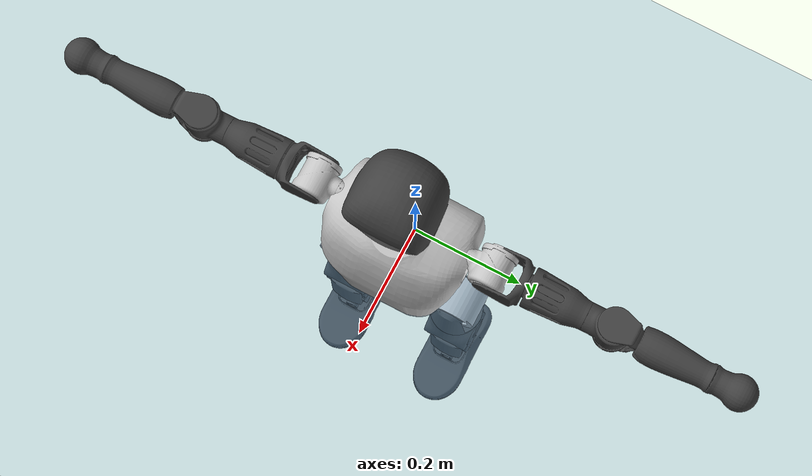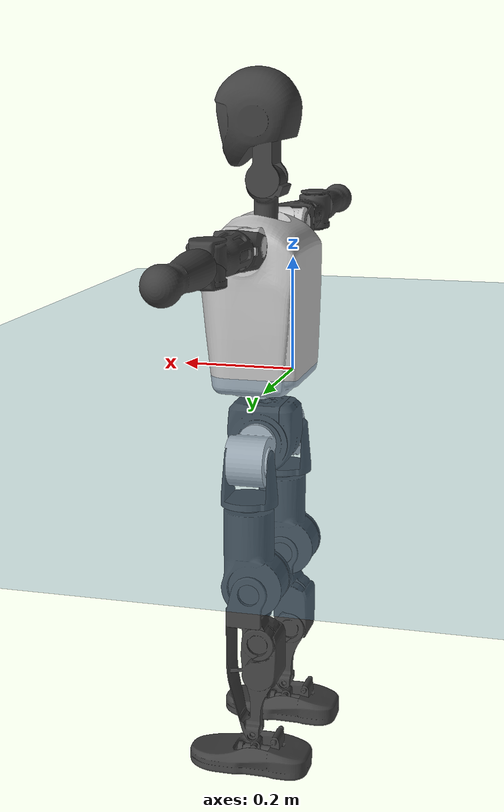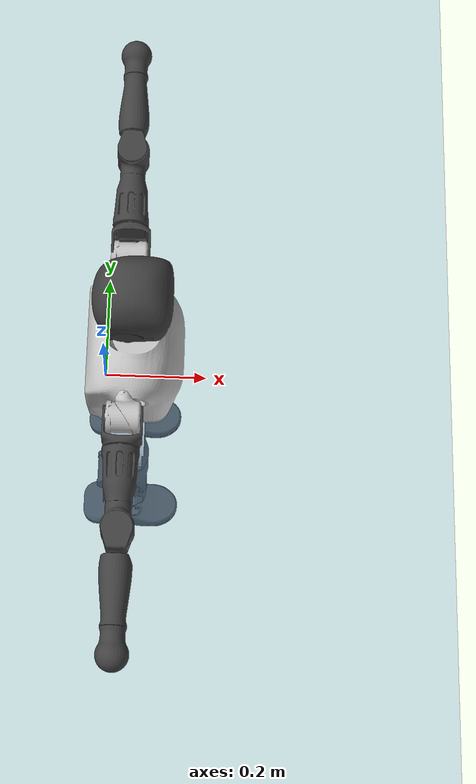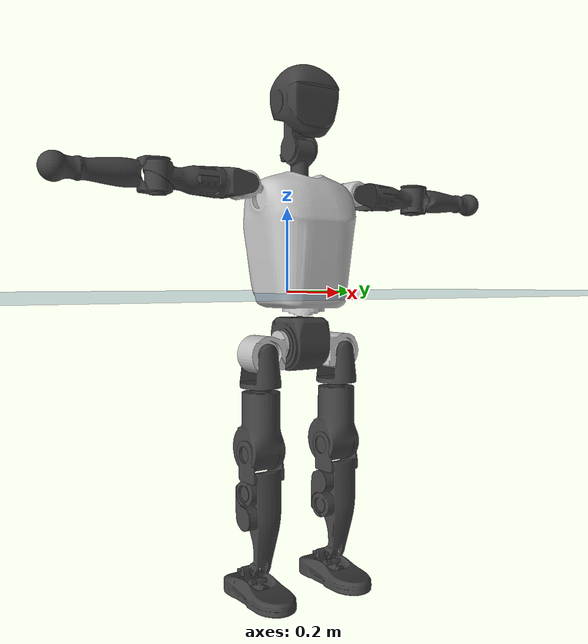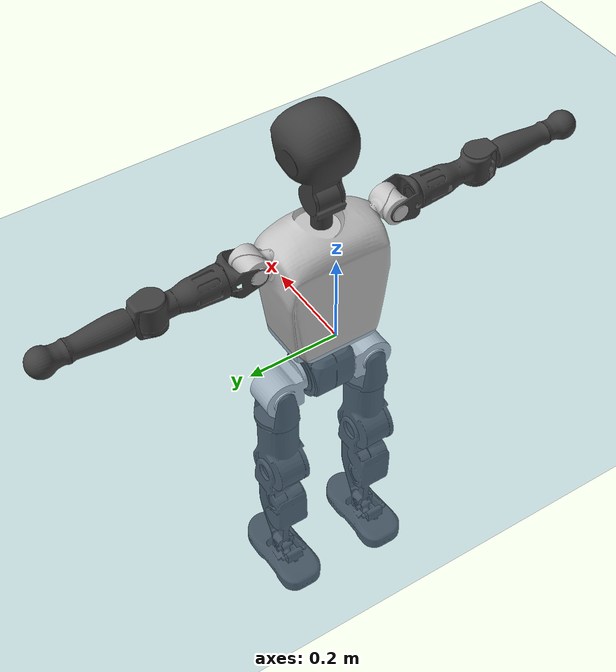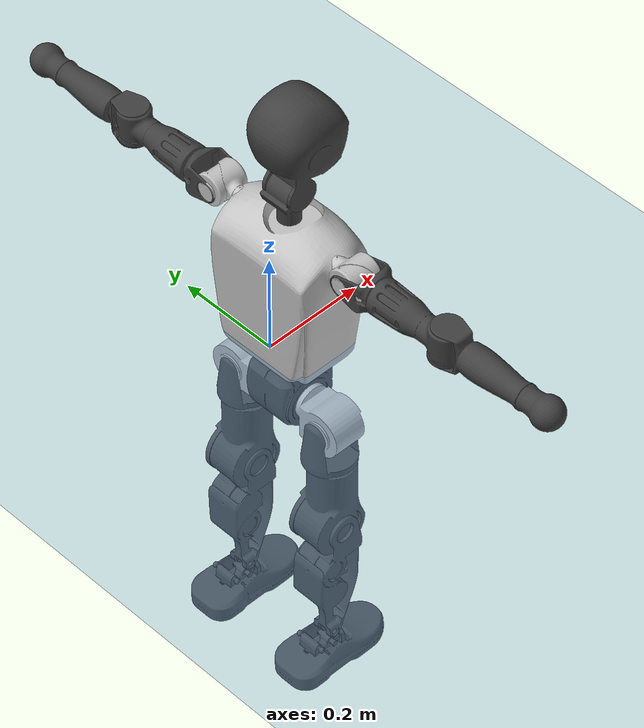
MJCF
<mujoco model="T1">
  <compiler angle="radian" assetdir="assets" balanceinertia="true" inertiafromgeom="false"/>

  <option timestep="0.005" density="1.2" viscosity="2e-05"/>

  <size nkey="1"/>

  <visual>
    <quality shadowsize="8192"/>
    <map shadowclip="0.5"/>
  </visual>

  <default>
    <default class="/">
      <joint armature="0.01" damping="0.01" frictionloss="0.1"/>
      <geom contype="0" conaffinity="0" group="1" solref="-1000 -80"/>
      <site size="0.01 0.005 0.005" group="5"/>
      <general forcelimited="true" biastype="affine" gainprm="25" biasprm="0 -25 -0.6"/>
      <default class="t1">
        <geom rgba="0.25 0.25 0.25 1"/>
        <default class="visual">
          <geom type="mesh" group="2"/>
        </default>
        <default class="collision">
          <geom group="3"/>
        </default>
        <default class="foot">
          <geom size="0.1115 0.05 0.015" type="box" condim="6" group="4" priority="1" solimp="0.015 1 0.015"/>
        </default>
        <default class="reward_collision_sphere">
          <geom group="5" rgba="1 0 0 1"/>
        </default>
      </default>
    </default>
  </default>

  <asset>
    <texture type="skybox" colorspace="auto" name="//unnamed_texture_0" builtin="gradient" rgb1="0.95 0.95 0.95" rgb2="0.95 0.95 0.95" width="100" height="600"/>
    <texture type="2d" colorspace="auto" name="texplane" builtin="checker" rgb1="0.345 0.575 0.748" rgb2="0.345 0.575 0.748" markrgb="1 1 1" width="512" height="512"/>
    <material name="MatPlane" class="/" texture="texplane" texuniform="true" texrepeat="2 2" specular="0.9"/>
    <mesh name="Trunk" class="/" file="Trunk.stl"/>
    <mesh name="H1" class="/" file="H1.stl"/>
    <mesh name="H2" class="/" file="H2.stl"/>
    <mesh name="AL1" class="/" file="AL1.stl"/>
    <mesh name="AL2" class="/" file="AL2.stl"/>
    <mesh name="AL3" class="/" file="AL3.stl"/>
    <mesh name="left_hand_link" class="/" file="left_hand_link.stl"/>
    <mesh name="AR1" class="/" file="AR1.stl"/>
    <mesh name="AR2" class="/" file="AR2.stl"/>
    <mesh name="AR3" class="/" file="AR3.stl"/>
    <mesh name="right_hand_link" class="/" file="right_hand_link.stl"/>
    <mesh name="Waist" class="/" file="Waist.stl"/>
    <mesh name="Hip_Pitch_Left" class="/" file="Hip_Pitch_Left.stl"/>
    <mesh name="Hip_Roll_Left" class="/" file="Hip_Roll_Left.stl"/>
    <mesh name="Hip_Yaw_Left" class="/" file="Hip_Yaw_Left.stl"/>
    <mesh name="Shank_Left" class="/" file="Shank_Left.stl"/>
    <mesh name="Ankle_Cross_Left" class="/" file="Ankle_Cross_Left.stl"/>
    <mesh name="left_foot_link" class="/" file="left_foot_link.stl"/>
    <mesh name="Hip_Pitch_Right" class="/" file="Hip_Pitch_Right.stl"/>
    <mesh name="Hip_Roll_Right" class="/" file="Hip_Roll_Right.stl"/>
    <mesh name="Hip_Yaw_Right" class="/" file="Hip_Yaw_Right.stl"/>
    <mesh name="Shank_Right" class="/" file="Shank_Right.stl"/>
    <mesh name="Ankle_Cross_Right" class="/" file="Ankle_Cross_Right.stl"/>
    <mesh name="right_foot_link" class="/" file="right_foot_link.stl"/>
  </asset>

  <worldbody>
    <geom name="floor" class="/" size="100 100 0.125" type="plane" group="0" material="MatPlane"/>
    <light name="toplight_shadow" class="/" pos="0 0 5" dir="0.0990148 0.0990148 -0.990148" type="directional" ambient="0.04 0.04 0.04" diffuse="0.55 0.55 0.55" specular="0.12 0.12 0.12"/>
    <light name="toplight_fill" class="/" pos="0 0 5" dir="0.0990148 0.0990148 -0.990148" type="directional" castshadow="false" ambient="0.04 0.04 0.04" diffuse="0.3 0.3 0.3" specular="0.08 0.08 0.08"/>
    <body name="trunk" childclass="t1" pos="-8.59331e-05 0.00234073 -0.00260281" quat="0.999999 -0.00102169 -0.000540948 0.000255822">
      <inertial pos="0.0405796 -0.000442754 0.113948" quat="0.999959 -0.000663058 -0.00892172 0.00127203" mass="9.65921" diaginertia="0.0201718 0.0802765 0.0810993"/>
      <joint name="//unnamed_joint_0" type="free" armature="0" damping="0" frictionloss="0"/>
      <geom name="//unnamed_geom_1" class="visual" rgba="0.76 0.76 0.76 1" mesh="Trunk"/>
      <geom name="//unnamed_geom_2" class="collision" size="0.071182 0.0949093 0.142364" pos="0.0447749 0 0.130798" type="box"/>
      <geom name="//unnamed_geom_3" class="reward_collision_sphere" size="0.109146" pos="0.0447749 0 0.108999"/>
      <geom name="//unnamed_geom_4" class="reward_collision_sphere" size="0.0142364" pos="0.0447749 0.0859388 0"/>
      <geom name="//unnamed_geom_5" class="reward_collision_sphere" size="0.0142364" pos="0.0447749 -0.0859388 0"/>
      <geom name="//unnamed_geom_6" class="reward_collision_sphere" size="0.0142364" pos="0.0447749 0.108182 0.196198"/>
      <geom name="//unnamed_geom_7" class="reward_collision_sphere" size="0.0142364" pos="0.0447749 -0.108182 0.196198"/>
      <site name="imu" pos="-0.0132047 0.00425758 -0.00250749" size="0.00949093"/>
      <camera name="track" pos="0 -2.02209 0" quat="0.707107 0.707107 0 0" mode="trackcom"/>
      <camera name="ego_camera" pos="0.0910423 0 0.457794" quat="-0.5 -0.5 0.5 0.5"/>
      <body name="H1" pos="0.0478728 -0.000325424 0.266547" quat="0.999999 -0.000846875 -0.000990588 -0.00055156">
        <inertial pos="0.00131501 -0.00028895 0.0620792" quat="0.763171 -0.0143251 0.00178863 0.646035" mass="0.385612" diaginertia="5.64342e-05 0.000241272 0.000220672"/>
        <joint name="AAHead_yaw" pos="0 0 0" axis="0.00152112 -0.00201135 0.999997" range="-1.61471 1.57609" armature="0.00916062" damping="0" frictionloss="0.0981598"/>
        <geom name="//unnamed_geom_8" class="visual" mesh="H1"/>
        <body name="H2" pos="-0.0007017 -0.000526193 0.0693395" quat="0.999999 0.000736483 0.000954613 0.000414761">
          <inertial pos="0.00482506 -7.18395e-06 0.107229" quat="0.988349 0.106741 -0.0745799 -0.0788026" mass="0.525171" diaginertia="0.000457789 0.00197293 0.00266234"/>
          <joint name="Head_pitch" pos="0 0 0" axis="0.00389389 -0.999906 -0.013184" range="-1.27598 0.401945" armature="0.0108191" damping="0.0186937" frictionloss="0.10671"/>
          <geom name="//unnamed_geom_9" class="visual" mesh="H2"/>
          <geom name="//unnamed_geom_10" class="collision" size="0.0759275" pos="0.00746248 0 0.119899"/>
          <geom name="//unnamed_geom_11" class="reward_collision_sphere" size="0.0854184" pos="0.014925 0 0.108999"/>
        </body>
      </body>
      <body name="AL1" pos="0.0461795 0.110181 0.24114" quat="1 6.07783e-05 0.000813883 0.000430374">
        <inertial pos="-0.00301232 0.0441676 -0.00167552" quat="0.513475 0.490793 -0.50719 0.488082" mass="0.440432" diaginertia="0.000306835 0.00136576 0.000442658"/>
        <joint name="Left_Shoulder_Pitch" pos="0 0 0" axis="0.00196455 0.999998 -0.000590185" stiffness="0.000827421" range="-3.29372 1.21799" armature="0.00947002" damping="0.018621" frictionloss="0.090661"/>
        <geom name="//unnamed_geom_12" class="visual" rgba="0.76 0.76 0.76 1" mesh="AL1"/>
        <body name="AL2" pos="-0.000668959 0.0497248 -0.00269104" quat="0.999999 -0.000971404 0.000833486 0.000433673">
          <inertial pos="0.00236203 0.0377046 -0.00291023" quat="0.484889 0.510212 -0.48844 0.515745" mass="0.142441" diaginertia="9.39523e-05 0.000357045 0.000271997"/>
          <joint name="Left_Shoulder_Roll" pos="0 0 0" axis="-0.999937 -0.0107213 -0.00336804" range="-1.5611 1.75213" armature="0.00892075" damping="0.00350705" frictionloss="0.0824839"/>
          <geom name="//unnamed_geom_13" class="visual" mesh="AL2"/>
          <body name="AL3" pos="-0.00198236 0.0596162 0.00095844" quat="1 -9.43965e-05 0.000560148 0.000341108">
            <inertial pos="0.000505492 0.0863707 0.00261728" quat="0.705702 0.708509 -0.000448529 0.0002173" mass="0.876821" diaginertia="0.00303529 0.0136767 0.000938308"/>
            <joint name="Left_Elbow_Pitch" pos="0 0 0" axis="-0.0135822 -0.999907 0.00122215" stiffness="0.000539557" range="-2.29248 2.279" armature="0.00958822" damping="0.00276959" frictionloss="0.0994901"/>
            <geom name="//unnamed_geom_14" class="visual" mesh="AL3"/>
            <geom name="//unnamed_geom_15" class="collision" size="0.0284728 0.071182" pos="0 0.0505522 0" quat="0.707105 0.707108 0 0" type="cylinder"/>
            <geom name="//unnamed_geom_16" class="reward_collision_sphere" size="0.0341674"/>
            <body name="left_hand_link" pos="-0.00203141 0.146598 0.00249101" quat="1 -0.000119062 -0.000183359 -7.53893e-05">
              <inertial pos="1.16186e-05 0.112112 0.00321062" quat="0.708282 0.705929 -0.000713236 -0.000588548" mass="0.284407" diaginertia="0.00188427 0.00911893 0.000341057"/>
              <joint name="Left_Elbow_Yaw" pos="0 0 0" axis="0.00992367 0.0117083 0.999882" range="-2.44556 0.00739709" armature="0.00885778" damping="0.0111241" frictionloss="0.105709"/>
              <geom name="//unnamed_geom_17" class="visual" mesh="left_hand_link"/>
              <geom name="//unnamed_geom_18" class="collision" size="0.0284728 0.0830456" pos="0 0.131436 0" quat="0.707105 0.707108 0 0" type="cylinder"/>
              <geom name="//unnamed_geom_19" class="reward_collision_sphere" size="0.0474547"/>
              <geom name="//unnamed_geom_20" class="reward_collision_sphere" size="0.0332183" pos="0 0.111215 0"/>
              <geom name="//unnamed_geom_21" class="reward_collision_sphere" size="0.0332183" pos="0 0.217375 0"/>
            </body>
          </body>
        </body>
      </body>
      <body name="AR1" pos="0.0453919 -0.108636 0.241753" quat="0.999999 -0.00104215 0.00103906 -0.000177217">
        <inertial pos="0.000498927 -0.0470491 -0.000681555" quat="0.503344 0.500575 -0.499303 0.496756" mass="0.449646" diaginertia="0.000303742 0.00136433 0.000444809"/>
        <joint name="Right_Shoulder_Pitch" pos="0 0 0" axis="1.58824e-05 -0.999998 -0.0021809" range="-1.22331 3.3557" armature="0.00981076" damping="0" frictionloss="0.0904688"/>
        <geom name="//unnamed_geom_22" class="visual" rgba="0.76 0.76 0.76 1" mesh="AR1"/>
        <body name="AR2" pos="-0.00110647 -0.0464869 0.0010625" quat="0.999999 -0.00084731 0.000460498 0.000794193">
          <inertial pos="0.00190654 -0.0387065 0.00293661" quat="0.512041 0.48872 -0.510108 0.488628" mass="0.131742" diaginertia="9.53397e-05 0.00036894 0.000261723"/>
          <joint name="Right_Shoulder_Roll" pos="0 0 0" axis="-0.999912 0.00888888 -0.00982495" stiffness="0.00131101" range="-1.74642 1.57716" armature="0.00956826" damping="0.0146181" frictionloss="0.108098"/>
          <geom name="//unnamed_geom_23" class="visual" mesh="AR2"/>
          <body name="AR3" pos="-0.000856705 -0.0583511 -0.000394108" quat="1 1.94154e-05 -6.27099e-05 0.00012953">
            <inertial pos="-0.0027661 -0.0859693 -0.00069681" quat="0.700513 0.713597 -4.83247e-05 -0.00773708" mass="0.887418" diaginertia="0.00286011 0.0128809 0.000954355"/>
            <joint name="Right_Elbow_Pitch" pos="0 0 0" axis="0.00350436 0.999967 0.00739181" range="-2.26152 2.23233" armature="0.00807206" damping="0.00313138" frictionloss="0.0989697"/>
            <geom name="//unnamed_geom_24" class="visual" mesh="AR3"/>
            <geom name="//unnamed_geom_25" class="collision" size="0.0284728 0.071182" pos="0 -0.0505522 0" quat="0.707105 0.707108 0 0" type="cylinder"/>
            <geom name="//unnamed_geom_26" class="reward_collision_sphere" size="0.0341674"/>
            <body name="right_hand_link" pos="-0.000217214 -0.149328 0.00261936" quat="1 -7.66612e-06 -4.87262e-06 -2.34024e-05">
              <inertial pos="-0.00257092 -0.107893 0.00103533" quat="0.705961 0.708251 0.000395928 0.000317135" mass="0.275059" diaginertia="0.00186752 0.0083591 0.000330634"/>
              <joint name="Right_Elbow_Yaw" pos="0 0 0" axis="-0.00217819 -0.000207009 0.999998" range="0.0145253 2.44362" armature="0.00939123" damping="0.00407572" frictionloss="0.0928491"/>
              <geom name="//unnamed_geom_27" class="visual" mesh="right_hand_link"/>
              <geom name="//unnamed_geom_28" class="collision" size="0.0284728 0.0830456" pos="0 -0.131436 0" quat="0.707105 0.707108 0 0" type="cylinder"/>
              <geom name="//unnamed_geom_29" class="reward_collision_sphere" size="0.0474547"/>
              <geom name="//unnamed_geom_30" class="reward_collision_sphere" size="0.0332183" pos="0 -0.111215 0"/>
              <geom name="//unnamed_geom_31" class="reward_collision_sphere" size="0.0332183" pos="0 -0.217375 0"/>
            </body>
          </body>
        </body>
      </body>
      <body name="Waist" pos="0.0489357 0.00070604 -0.123384" quat="1 -4.65698e-05 2.24569e-05 -2.12324e-05">
        <inertial pos="0.00397469 -5.8974e-05 0.00900578" quat="0.983691 0.00178819 -0.179805 0.004431" mass="2.18532" diaginertia="0.00119484 0.00572342 0.00702723"/>
        <joint name="Waist" pos="0 0 0" axis="-0.00185806 0.00351605 0.999992" range="-1.62285 1.60395" armature="0.00960685" damping="0" frictionloss="0.0956953"/>
        <geom name="//unnamed_geom_32" class="visual" mesh="Waist"/>
        <body name="Hip_Pitch_Left" pos="1.40212e-05 0.109574 0.00285499" quat="1 0.000232438 7.55767e-05 -0.000347263">
          <inertial pos="-0.00126097 -0.00728523 -0.0222536" quat="0.97525 0.220794 0.0115994 0.00191487" mass="0.900649" diaginertia="0.000428828 0.00153488 0.00189968"/>
          <joint name="Left_Hip_Pitch" pos="0 0 0" axis="0.00594328 0.999978 0.00298471" range="-1.74335 1.57886" armature="0.00957414" damping="0" frictionloss="0.0817522"/>
          <geom name="//unnamed_geom_33" class="visual" rgba="0.76 0.76 0.76 1" mesh="Hip_Pitch_Left"/>
          <body name="Hip_Roll_Left" pos="0.0026709 5.67136e-05 -0.0204954" quat="1 1.07102e-05 -2.30969e-05 6.76403e-06">
            <inertial pos="0.000764377 0.0011096 -0.0584037" quat="0.707696 -0.0118598 -0.00666349 0.706386" mass="0.342795" diaginertia="0.00042155 0.00169717 0.000821987"/>
            <joint name="Left_Hip_Roll" pos="0 0 0" axis="-0.999999 0.000529659 -0.00102133" range="-1.51549 0.203156" armature="0.0095633" damping="0.022329" frictionloss="0.0827034"/>
            <geom name="//unnamed_geom_34" class="visual" mesh="Hip_Roll_Left"/>
            <geom name="//unnamed_geom_35" class="reward_collision_sphere" size="0.0522001"/>
            <body name="Hip_Yaw_Left" pos="-0.00115348 -0.00141587 -0.0873091" quat="1 -2.1909e-05 -1.30177e-05 5.01676e-05">
              <inertial pos="-0.00560348 0.000153679 -0.100188" quat="0.696276 -0.0349107 -0.0325156 0.716187" mass="1.8066" diaginertia="0.0061552 0.026905 0.00403318"/>
              <joint name="Left_Hip_Yaw" pos="0 0 0" axis="-0.0100378 0.00356528 -0.999943" range="-1.01947 1.06173" armature="0.00824199" damping="0" frictionloss="0.0817602"/>
              <geom name="//unnamed_geom_36" class="visual" mesh="Hip_Yaw_Left"/>
              <geom name="//unnamed_geom_37" class="collision" size="0.0474547 0.0759275" type="cylinder"/>
              <body name="Shank_Left" pos="-0.0108558 0.00263597 -0.143877" quat="0.999999 0.000974114 0.000740099 0.000258137">
                <inertial pos="-0.00288626 -0.00179231 -0.136214" quat="0.996971 0.0123916 -0.0305567 0.0704423" mass="1.4965" diaginertia="0.00846433 0.0374007 0.00291205"/>
                <joint name="Left_Knee_Pitch" pos="0 0 0" axis="-0.0103405 0.999892 -0.01048" stiffness="0.00104859" range="0.00683146 2.34336" armature="0.0107151" damping="0.0131271" frictionloss="0.0821395"/>
                <geom name="//unnamed_geom_38" class="visual" mesh="Shank_Left"/>
                <geom name="//unnamed_geom_39" class="collision" size="0.0474547 0.071182" pos="0 0 -0.130798" type="cylinder"/>
                <geom name="//unnamed_geom_40" class="reward_collision_sphere" size="0.0616911"/>
                <body name="Ankle_Cross_Left" pos="-0.0027054 -0.000803899 -0.305265" quat="1 0.000163132 -7.85318e-07 4.53966e-06">
                  <inertial pos="-0.00350293 0.000539236 -0.00887293" quat="0.438085 0.560065 0.544256 0.44519" mass="0.0624733" diaginertia="6.73794e-06 2.74279e-05 1.74549e-05"/>
                  <joint name="Left_Ankle_Pitch" pos="0 0 0" axis="-0.00540253 0.999966 0.00623935" range="-0.866871 0.293386" armature="0.00955055" damping="0.0150009" frictionloss="0.0922219"/>
                  <geom name="//unnamed_geom_41" class="visual" mesh="Ankle_Cross_Left"/>
                  <body name="left_foot_link" pos="0.00213642 7.89127e-05 -0.0130471" quat="0.999999 -0.000210575 8.08045e-05 -0.00100144">
                    <inertial pos="8.82829e-06 -0.000112776 -0.00763501" quat="-8.76053e-06 0.620367 0.000394571 0.784312" mass="0.566203" diaginertia="0.000601273 0.00252227 0.00327451"/>
                    <joint name="Left_Ankle_Roll" pos="0 0 0" axis="-0.999909 0.00864068 -0.0103546" range="-0.493859 0.463975" armature="0.00939381" damping="0.0211144" frictionloss="0.0943339"/>
                    <geom name="//unnamed_geom_42" class="visual" mesh="left_foot_link"/>
                    <geom name="left_foot" class="foot" size="0.114758 0.0519046 0.0154192" pos="0.00746248 0 -0.0163498"/>
                    <geom name="//unnamed_geom_44" class="reward_collision_sphere" size="0.0493528" pos="0.00746248 0 -0.0163498"/>
                    <geom name="//unnamed_geom_45" class="reward_collision_sphere" size="0.0284728" pos="0.0708936 -0.023254 -0.0163498"/>
                    <geom name="//unnamed_geom_46" class="reward_collision_sphere" size="0.0284728" pos="-0.0522374 -0.023254 -0.0163498"/>
                    <site name="left_foot" class="foot" pos="0.00746248 0 -0.0163498" size="0.00949093"/>
                  </body>
                </body>
              </body>
            </body>
          </body>
        </body>
        <body name="Hip_Pitch_Right" pos="-0.00362263 -0.107744 0.00256154" quat="0.999999 -0.000545712 0.000497156 -0.000854052">
          <inertial pos="-0.000529028 0.00530758 -0.0202305" quat="0.973203 -0.229611 0.012452 -7.46057e-05" mass="0.868582" diaginertia="0.000410397 0.00153785 0.00195154"/>
          <joint name="Right_Hip_Pitch" pos="0 0 0" axis="-0.00328946 -0.999993 -0.00179088" range="-1.52583 1.74353" armature="0.00945508" damping="0.0186057" frictionloss="0.106853"/>
          <geom name="//unnamed_geom_47" class="visual" rgba="0.76 0.76 0.76 1" mesh="Hip_Pitch_Right"/>
          <body name="Hip_Roll_Right" pos="-0.00309342 0.0011412 -0.0190801" quat="1 -7.18864e-05 0.000143366 -0.000157411">
            <inertial pos="0.00131192 -0.000486963 -0.057072" quat="0.707176 -0.00612138 -0.00591358 0.706986" mass="0.329697" diaginertia="0.000393136 0.00161503 0.000794238"/>
            <joint name="Right_Hip_Roll" pos="0 0 0" axis="-0.999907 0.00913821 0.0101684" range="-0.152934 1.5573" armature="0.00938866" damping="0.00169553" frictionloss="0.108056"/>
            <geom name="//unnamed_geom_48" class="visual" mesh="Hip_Roll_Right"/>
            <geom name="//unnamed_geom_49" class="reward_collision_sphere" size="0.0522001"/>
            <body name="Hip_Yaw_Right" pos="0.00246476 -0.00103084 -0.0868826" quat="1 3.56293e-05 -1.35241e-05 1.54243e-05">
              <inertial pos="-0.00750226 0.00195684 -0.0983489" quat="0.714439 -0.0310917 -0.0326043 0.698246" mass="1.79248" diaginertia="0.00598918 0.0260268 0.00384225"/>
              <joint name="Right_Hip_Yaw" pos="0 0 0" axis="0.00806339 0.00105119 -0.999967" range="-1.01598 1.00115" armature="0.00939753" damping="0.0207448" frictionloss="0.0956572"/>
              <geom name="//unnamed_geom_50" class="visual" mesh="Hip_Yaw_Right"/>
              <geom name="//unnamed_geom_51" class="collision" size="0.0474547 0.0759275" type="cylinder"/>
              <body name="Shank_Right" pos="-0.00888144 0.000560929 -0.143858" quat="1 0.000120136 -9.10025e-05 1.90284e-05">
                <inertial pos="-0.00657116 -2.57006e-05 -0.136245" quat="0.999291 0.0111919 -0.0196548 -0.0301102" mass="1.52784" diaginertia="0.00796864 0.0369494 0.00292296"/>
                <joint name="Right_Knee_Pitch" pos="0 0 0" axis="-0.00575599 -0.999974 0.00441661" range="-2.33056 -0.0569128" armature="0.0097466" damping="0.00944456" frictionloss="0.0829993"/>
                <geom name="//unnamed_geom_52" class="visual" mesh="Shank_Right"/>
                <geom name="//unnamed_geom_53" class="collision" size="0.0474547 0.071182" pos="0 0 -0.130798" type="cylinder"/>
                <geom name="//unnamed_geom_54" class="reward_collision_sphere" size="0.0616911"/>
                <body name="Ankle_Cross_Right" pos="-0.00146647 -0.00210612 -0.308292" quat="1 -8.5447e-05 -9.35719e-05 2.36277e-05">
                  <inertial pos="-0.00267256 -0.00144222 -0.00804029" quat="0.449264 0.548436 0.553506 0.437048" mass="0.0610963" diaginertia="6.76974e-06 2.75724e-05 1.75066e-05"/>
                  <joint name="Right_Ankle_Pitch" pos="0 0 0" axis="0.000737448 -1 -0.000645718" range="-0.309032 0.914332" armature="0.0100688" damping="0.00762141" frictionloss="0.094756"/>
                  <geom name="//unnamed_geom_55" class="visual" mesh="Ankle_Cross_Right"/>
                  <body name="right_foot_link" pos="0.00102191 -0.000387536 -0.0114769" quat="1 -9.59769e-05 9.02713e-05 0.000140612">
                    <inertial pos="-0.000391688 -0.000825165 -0.00752761" quat="0.00266762 0.623334 -0.0032936 0.781944" mass="0.592675" diaginertia="0.000619697 0.00244445 0.00337345"/>
                    <joint name="Right_Ankle_Roll" pos="0 0 0" axis="-1 0.000198628 0.000434871" range="-0.430965 0.443936" armature="0.00886749" damping="0.0021096" frictionloss="0.104912"/>
                    <geom name="//unnamed_geom_56" class="visual" mesh="right_foot_link"/>
                    <geom name="right_foot" class="foot" size="0.101658 0.0420889 0.0155264" pos="0.00746248 0 -0.0163498"/>
                    <geom name="//unnamed_geom_58" class="reward_collision_sphere" size="0.0379637"/>
                    <geom name="//unnamed_geom_59" class="reward_collision_sphere" size="0.0284728" pos="0.00746248 0 -0.0163498"/>
                    <geom name="//unnamed_geom_60" class="reward_collision_sphere" size="0.0284728" pos="0.0708936 0.023254 -0.0163498"/>
                    <geom name="//unnamed_geom_61" class="reward_collision_sphere" size="0.0284728" pos="-0.0522374 0.023254 -0.0163498"/>
                    <site name="right_foot" class="foot" pos="0.00746248 0 -0.0163498" size="0.00949093"/>
                  </body>
                </body>
              </body>
            </body>
          </body>
        </body>
      </body>
    </body>
  </worldbody>

  <contact>
    <pair class="/" geom1="floor" geom2="left_foot" name="//unnamed_contact_0"/>
    <pair class="/" geom1="floor" geom2="right_foot" name="//unnamed_contact_1"/>
  </contact>

  <actuator>
    <general name="AAHead_yaw" class="/" joint="AAHead_yaw" forcerange="-6.66725 6.66725" gainprm="25.3867" biasprm="0 -25.3867 -0.561935"/>
    <general name="Head_pitch" class="/" joint="Head_pitch" forcerange="-6.95861 6.95861" gainprm="25.3867" biasprm="0 -25.3867 -0.561935"/>
    <general name="Left_Shoulder_Pitch" class="/" joint="Left_Shoulder_Pitch" forcerange="-16.256 16.256" gainprm="25.3867" biasprm="0 -25.3867 -0.561935"/>
    <general name="Left_Shoulder_Roll" class="/" joint="Left_Shoulder_Roll" forcerange="-16.6828 16.6828" gainprm="25.3867" biasprm="0 -25.3867 -0.561935"/>
    <general name="Left_Elbow_Pitch" class="/" joint="Left_Elbow_Pitch" forcerange="-15.4093 15.4093" gainprm="25.3867" biasprm="0 -25.3867 -0.561935"/>
    <general name="Left_Elbow_Yaw" class="/" joint="Left_Elbow_Yaw" forcerange="-17.0961 17.0961" gainprm="25.3867" biasprm="0 -25.3867 -0.561935"/>
    <general name="Right_Shoulder_Pitch" class="/" joint="Right_Shoulder_Pitch" forcerange="-16.6337 16.6337" gainprm="25.3867" biasprm="0 -25.3867 -0.561935"/>
    <general name="Right_Shoulder_Roll" class="/" joint="Right_Shoulder_Roll" forcerange="-18.449 18.449" gainprm="25.3867" biasprm="0 -25.3867 -0.561935"/>
    <general name="Right_Elbow_Pitch" class="/" joint="Right_Elbow_Pitch" forcerange="-17.2795 17.2795" gainprm="25.3867" biasprm="0 -25.3867 -0.561935"/>
    <general name="Right_Elbow_Yaw" class="/" joint="Right_Elbow_Yaw" forcerange="-16.909 16.909" gainprm="25.3867" biasprm="0 -25.3867 -0.561935"/>
    <general name="Waist" class="/" joint="Waist" forcerange="-28.2931 28.2931" gainprm="25.3867" biasprm="0 -25.3867 -0.561935"/>
    <general name="Left_Hip_Pitch" class="/" joint="Left_Hip_Pitch" forcerange="-42.3515 42.3515" gainprm="25.3867" biasprm="0 -25.3867 -0.561935"/>
    <general name="Left_Hip_Roll" class="/" joint="Left_Hip_Roll" forcerange="-31.1679 31.1679" gainprm="25.3867" biasprm="0 -25.3867 -0.561935"/>
    <general name="Left_Hip_Yaw" class="/" joint="Left_Hip_Yaw" forcerange="-26.1954 26.1954" gainprm="25.3867" biasprm="0 -25.3867 -0.561935"/>
    <general name="Left_Knee_Pitch" class="/" joint="Left_Knee_Pitch" forcerange="-62.0921 62.0921" gainprm="25.3867" biasprm="0 -25.3867 -0.561935"/>
    <general name="Left_Ankle_Pitch" class="/" joint="Left_Ankle_Pitch" forcerange="-17.4684 17.4684" gainprm="25.3867" biasprm="0 -25.3867 -0.561935"/>
    <general name="Left_Ankle_Roll" class="/" joint="Left_Ankle_Roll" forcerange="-13.2558 13.2558" gainprm="25.3867" biasprm="0 -25.3867 -0.561935"/>
    <general name="Right_Hip_Pitch" class="/" joint="Right_Hip_Pitch" forcerange="-38.3243 38.3243" gainprm="25.3867" biasprm="0 -25.3867 -0.561935"/>
    <general name="Right_Hip_Roll" class="/" joint="Right_Hip_Roll" forcerange="-29.4256 29.4256" gainprm="25.3867" biasprm="0 -25.3867 -0.561935"/>
    <general name="Right_Hip_Yaw" class="/" joint="Right_Hip_Yaw" forcerange="-31.0384 31.0384" gainprm="25.3867" biasprm="0 -25.3867 -0.561935"/>
    <general name="Right_Knee_Pitch" class="/" joint="Right_Knee_Pitch" forcerange="-57.1338 57.1338" gainprm="25.3867" biasprm="0 -25.3867 -0.561935"/>
    <general name="Right_Ankle_Pitch" class="/" joint="Right_Ankle_Pitch" forcerange="-18.8076 18.8076" gainprm="25.3867" biasprm="0 -25.3867 -0.561935"/>
    <general name="Right_Ankle_Roll" class="/" joint="Right_Ankle_Roll" forcerange="-14.4746 14.4746" gainprm="25.3867" biasprm="0 -25.3867 -0.561935"/>
  </actuator>

  <sensor>
    <gyro site="imu" name="imu_angular_velocity"/>
    <velocimeter site="imu" name="imu_linear_velocity"/>
    <framelinvel objtype="site" objname="left_foot" name="left_foot_global_linear_velocity"/>
    <framelinvel objtype="site" objname="right_foot" name="right_foot_global_linear_velocity"/>
  </sensor>

  <keyframe>
    <key name="home" qpos="0 0 0.6385 1 0 0 0 0 0 0 1.4 0 -0.4 0 -1.4 0 0.4 0 -0.4 0 0 0.8 -0.4 0 0.4 0 0 -0.8 0.4 0"/>
  </keyframe>
</mujoco>
